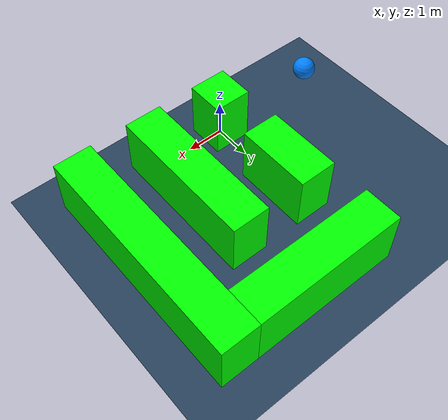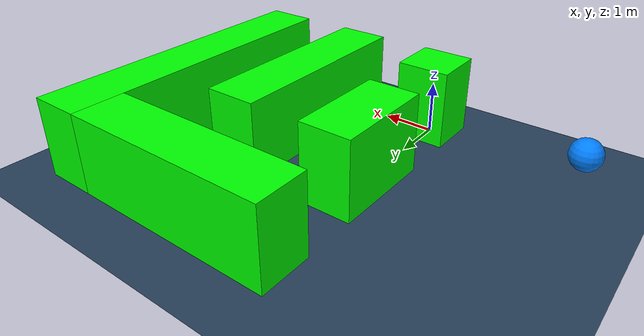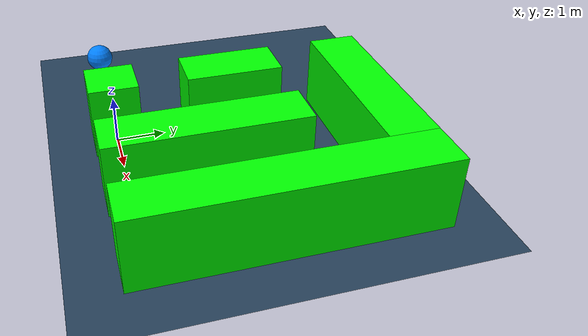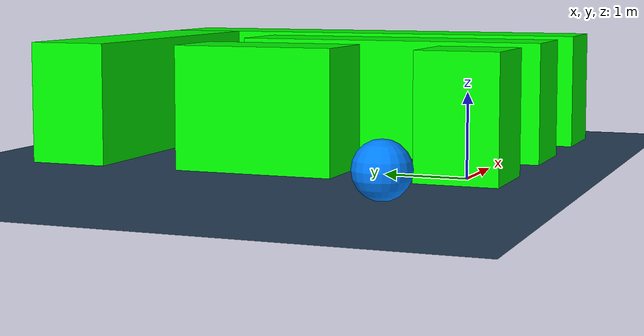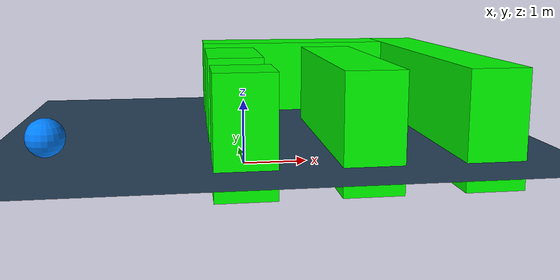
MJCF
<!-- this code is for day 3 -->
<!-- reference docs: https://mujoco.readthedocs.io/en/stable/XMLreference.html -->

<mujoco>
    <option gravity="0 0 -9.81"/>

    <asset>
        <texture type="skybox" builtin="gradient" rgb1="0.3 0.5 0.7" rgb2="0 0 0" width="512" height="512"/>
        <texture name="texplane" type="2d" builtin="checker" rgb1="0.2 0.3 0.4" rgb2="0.1 0.2 0.3" width="512" height="512" mark="cross" markrgb=".8 .8 .8"/>
        <material name="matplane" texture="texplane" texrepeat="1 1" texuniform="true" reflectance="0.2"/>
    </asset>

    <worldbody>
        <!-- floor -->
        <geom name="floor" pos="0 0 0" size="100 100 0.1" type="plane" material="matplane"/>
        <!-- Optional: Coordinate markers -->

        <!-- Robot -->
        <body name="robot" pos="-3 0 0.5">
            <joint name="free" type="free" damping="1.0"/>
            <geom name="robot_body" type="sphere" size="0.3" rgba="0 0.5 1 1" mass="1" friction="0.1 0.01 0.01"/>
            <camera name="robotview" pos="0 0 0.3" xyaxes="1 0 0 0 1 0" mode="track"/>
        </body>

        <!-- obstacles -->
        <body name="wall">
            <geom name="obs1_geom" type="box" size="0.5 0.5 1" rgba="0 1 0 1" pos="0 0 0.5"/>
            <geom name="obs2_geom" type="box" size="0.5 2 1" rgba="0 1 0 1" pos="2 1.5 0.5"/>
            <geom name="obs3_geom" type="box" size="0.5 1 1" rgba="0 1 0 1" pos="0 2.5 0.5"/>
            <geom name="obs4_geom" type="box" size="2 0.5 1" rgba="0 1 0 1" pos="1.5 5 0.5"/>
            <geom name="obs5_geom" type="box" size="0.5 3 1" rgba="0 1 0 1" pos="4 2.5 0.5"/>
        </body>

    </worldbody>

</mujoco>
